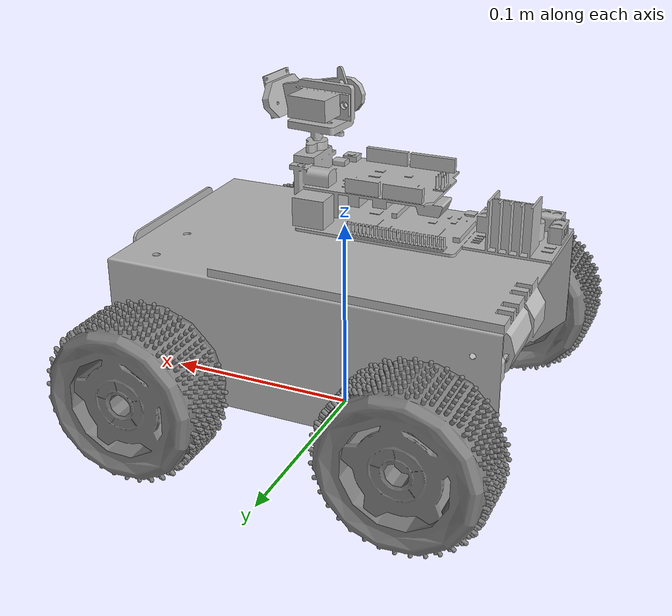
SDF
<?xml version="1.0" ?>
<sdf version="1.6">
  <model name='Axioma'>
    <pose>0 0 0 1.5708 0 0</pose>

    <link name='chassis'>
    <inertial>
        <mass>1</mass>
        <inertia>
          <ixx>0.0227</ixx>
          <ixy>0</ixy>
          <ixz>0</ixz>
          <iyy>0.0852</iyy>
          <iyz>0</iyz>
          <izz>0.1041</izz>
        </inertia>
      </inertial>
      <visual name='visual'>
        <geometry>
          <mesh>
          <scale>1 1 1</scale>
          <uri>model://axioma/meshes/visual/chasis.obj</uri>
        </mesh>
        </geometry>
        <material>
          <script>
            <uri>model://dolly/materials/scripts</uri>
            <uri>model://dolly/materials/textures</uri>
            <name>Dolly/fur</name>
          </script>
        </material>
      </visual>
       <sensor name="hls_lfcd_lds" type="ray">
          <pose>0 0.14 0 1.5708 0 0</pose>
          <always_on>true</always_on>
          <visualize>true</visualize>
          <pose>-0.064 0 0.121 0 0 0</pose>
          <update_rate>5</update_rate>
          <ray>
            <scan>
              <horizontal>
                <samples>360</samples>
                <resolution>1.000000</resolution>
                <min_angle>0.000000</min_angle>
                <max_angle>6.280000</max_angle>
              </horizontal>
            </scan>
            <range>
              <min>0.120000</min>
              <max>3.5</max>
              <resolution>0.001000</resolution>
            </range>
            <noise>
              <type>gaussian</type>
              <mean>0.0</mean>
              <stddev>0.01</stddev>
            </noise>
          </ray>
          <plugin name="turtlebot3_laserscan" filename="libgazebo_ros_ray_sensor.so">
            <ros>
              <namespace>/axioma</namespace>
                <remapping>~/out:=scan</remapping>
            </ros>
            <output_type>sensor_msgs/LaserScan</output_type>
            <frame_name>chassis</frame_name>
          </plugin>
        </sensor>
        <sensor name="intel_realsense_r200_depth" type="depth">
          <always_on>1</always_on>
          <update_rate>5</update_rate>
          <pose>0 0.4 0 -1.5708 0 0</pose>
          <camera name="realsense_depth_camera">
          </camera>
          <plugin name="intel_realsense_r200_depth_driver" filename="libgazebo_ros_camera.so">
            <ros>
            </ros>
            <camera_name>intel_realsense_r200_depth</camera_name>
            <frame_name>camera_depth_frame</frame_name>
            <hack_baseline>0.07</hack_baseline>
            <min_depth>0.001</min_depth>
            <max_depth>5.0</max_depth>
          </plugin>
        </sensor>
    </link>

    <link name='left_wheel_1'>
      <pose>0.06442 0.04068 -0.07385 0 0 0</pose>
      <inertial>
        <mass>0.1</mass>
        <inertia>
          <ixx>0.0029</ixx>
          <ixy>0</ixy>
          <ixz>0</ixz>
          <iyy>0.0029</iyy>
          <iyz>0</iyz>
          <izz>0.0056</izz>
        </inertia>
      </inertial>
      <visual name='visual'>
        <geometry>
          <mesh>
            <scale>1 1 1</scale>
            <uri>model://axioma/meshes/visual/llanta.obj</uri>
        </mesh>
        </geometry>
        <material>
          <diffuse>0.5 0.5 0.5 1</diffuse>
          <ambient>0 0 0 1</ambient>
          <specular>1 1 1 1</specular>
          <emissive>0 0 0 1</emissive>
        </material>
      </visual>
      <collision name='collision'>
        <geometry>
          <mesh>
          <scale>1 1 1</scale>
          <uri>model://axioma/meshes/collision/llanta.obj</uri>
        </mesh>
        </geometry>
        <surface>
          <friction>
            <ode>
              <mu>1</mu>
              <mu2>1</mu2>
              <slip1>0</slip1>
              <slip2>0</slip2>
            </ode>
          </friction>
          <contact>
            <ode>
              <soft_cfm>0</soft_cfm>
              <soft_erp>0.2</soft_erp>
              <kp>1e+13</kp>
              <kd>1</kd>
              <max_vel>0.01</max_vel>
              <min_depth>0.01</min_depth>
            </ode>
          </contact>
        </surface>
      </collision>
    </link>

<link name='left_wheel_2'>

      <pose>-0.070092 0.04068 -0.07385 0 0 0</pose>
      <inertial>
        <mass>0.1</mass>
        <inertia>
          <ixx>0.0029</ixx>
          <ixy>0</ixy>
          <ixz>0</ixz>
          <iyy>0.0029</iyy>
          <iyz>0</iyz>
          <izz>0.0056</izz>
        </inertia>
      </inertial>
      <visual name='visual'>
        <geometry>
          <mesh>
            <scale>1 1 1</scale>
            <uri>model://axioma/meshes/visual/llanta.obj</uri>
        </mesh>
        </geometry>
        <material>
          <diffuse>0.5 0.5 0.5 1</diffuse>
          <ambient>0 0 0 1</ambient>
          <specular>1 1 1 1</specular>
          <emissive>0 0 0 1</emissive>
        </material>
      </visual>
      <collision name='collision'>
        <geometry>
          <mesh>
          <scale>1 1 1</scale>
          <uri>model://axioma/meshes/collision/llanta.obj</uri>
        </mesh>
        </geometry>
        <surface>
          <friction>
            <ode>
              <mu>1</mu>
              <mu2>1</mu2>
              <slip1>0</slip1>
              <slip2>0</slip2>
            </ode>
          </friction>
          <contact>
            <ode>
              <soft_cfm>0</soft_cfm>
              <soft_erp>0.2</soft_erp>
              <kp>1e+13</kp>
              <kd>1</kd>
              <max_vel>0.01</max_vel>
              <min_depth>0.01</min_depth>
            </ode>
          </contact>
        </surface>
      </collision>
    </link>

    <link name='right_wheel_3'>
      <pose>-0.070092 0.04068 0.06385 0 3.14159 0</pose>
      <inertial>
        <mass>0.1</mass>
        <inertia>
          <ixx>0.0029</ixx>
          <ixy>0</ixy>
          <ixz>0</ixz>
          <iyy>0.0029</iyy>
          <iyz>0</iyz>
          <izz>0.0056</izz>
        </inertia>
      </inertial>
      <visual name='visual'>
        <geometry>
          <mesh>
            <scale>1 1 1</scale>
            <uri>model://axioma/meshes/visual/llanta.obj</uri>
        </mesh>
        </geometry>
        <material>
          <diffuse>0.5 0.5 0.5 1</diffuse>
          <ambient>0 0 0 1</ambient>
          <specular>1 1 1 1</specular>
          <emissive>0 0 0 1</emissive>
        </material>
      </visual>
      <collision name='collision'>
        <geometry>
          <mesh>
          <scale>1 1 1</scale>
          <uri>model://axioma/meshes/collision/llanta.obj</uri>
        </mesh>
        </geometry>
        <surface>
          <friction>
            <ode>
              <mu>1</mu>
              <mu2>1</mu2>
              <slip1>0</slip1>
              <slip2>0</slip2>
            </ode>
          </friction>
          <contact>
            <ode>
              <soft_cfm>0</soft_cfm>
              <soft_erp>0.2</soft_erp>
              <kp>1e+13</kp>
              <kd>1</kd>
              <max_vel>0.01</max_vel>
              <min_depth>0.01</min_depth>
            </ode>
          </contact>
        </surface>
      </collision>
    </link>

    <link name='right_wheel_4'>
      <pose>0.06442 0.04068 0.06385 0 3.14159 0</pose>
      <inertial>
        <mass>0.1</mass>
        <inertia>
          <ixx>0.0029</ixx>
          <ixy>0</ixy>
          <ixz>0</ixz>
          <iyy>0.0029</iyy>
          <iyz>0</iyz>
          <izz>0.0056</izz>
        </inertia>
      </inertial>
      <visual name='visual'>
        <geometry>
          <mesh>
            <scale>1 1 1</scale>
            <uri>model://axioma/meshes/visual/llanta.obj</uri>
        </mesh>
        </geometry>
        <material>
          <diffuse>0.5 0.5 0.5 1</diffuse>
          <ambient>0 0 0 1</ambient>
          <specular>1 1 1 1</specular>
          <emissive>0 0 0 1</emissive>
        </material>
      </visual>
      <collision name='collision'>
        <geometry>
          <mesh>
          <scale>1 1 1</scale>
          <uri>model://axioma/meshes/collision/llanta.obj</uri>
        </mesh>
        </geometry>
        <surface>
          <friction>
            <ode>
              <mu>1</mu>
              <mu2>1</mu2>
              <slip1>0</slip1>
              <slip2>0</slip2>
            </ode>
          </friction>
          <contact>
            <ode>
              <soft_cfm>0</soft_cfm>
              <soft_erp>0.2</soft_erp>
              <kp>1e+13</kp>
              <kd>1</kd>
              <max_vel>0.01</max_vel>
              <min_depth>0.01</min_depth>
            </ode>
          </contact>
        </surface>
      </collision>
    </link>

    <joint name='left_wheel_joint_1' type='revolute'>
      <parent>chassis</parent>
      <child>left_wheel_1</child>
      <axis>
        <xyz>0 0 -1</xyz>
        <limit>
          <lower>1.79769e+308</lower>
          <upper>-1.79769e+308</upper>
        </limit>
      </axis>
    </joint>

    <joint name='left_wheel_joint_2' type='revolute'>
      <parent>chassis</parent>
      <child>left_wheel_2</child>
      <axis>
        <xyz>0 0 -1</xyz>
        <limit>
          <lower>1.79769e+308</lower>
          <upper>-1.79769e+308</upper>
        </limit>
      </axis>
    </joint>

    <joint name='right_wheel_joint_3' type='revolute'>
      <parent>chassis</parent>
      <child>right_wheel_3</child>
      <axis>
        <xyz>0 0 1</xyz>
        <limit>
          <lower>1.79769e+308</lower>
          <upper>-1.79769e+308</upper>
        </limit>
      </axis>
    </joint>

    <joint name='right_wheel_joint_4' type='revolute'>
      <parent>chassis</parent>
      <child>right_wheel_4</child>
      <axis>
        <xyz>0 0 1</xyz>
        <limit>
          <lower>1.79769e+308</lower>
          <upper>-1.79769e+308</upper>
        </limit>
      </axis>
    </joint>

<plugin name='skid_steer_drive' filename='libgazebo_ros_diff_drive.so'>
        <ros>
          <!-- Set namespace -->
          <namespace>/axioma</namespace>
          <!-- Remap default topics -->
          <argument>cmd_vel:=cmd_demo</argument>
          <argument>odom:=odom_demo</argument>
        </ros>
        <!-- Update rate -->
        <update_rate>500</update_rate>
        <!-- Number of wheel pairs -->
        <num_wheel_pairs>2</num_wheel_pairs>
        <!-- wheels0 -->
        <left_joint>left_wheel_joint_1</left_joint>
        <right_joint>right_wheel_joint_4</right_joint>
        <!-- wheels1-->
        <left_joint>left_wheel_joint_2</left_joint>
        <right_joint>right_wheel_joint_3</right_joint>
        <!-- kinematics -->
        <wheel_separation>0.1725</wheel_separation>
        <wheel_separation>0.1725</wheel_separation>
        <wheel_diameter>0.0762</wheel_diameter>
        <wheel_diameter>0.0762</wheel_diameter>
        <!-- limits -->
        <max_wheel_torque>30</max_wheel_torque>
        <max_wheel_acceleration>1</max_wheel_acceleration>
        <!-- output -->
        <publish_odom>true</publish_odom>
        <publish_odom_tf>true</publish_odom_tf>
        <publish_wheel_tf>true</publish_wheel_tf>
        <odometry_frame>odom_demo</odometry_frame>
        <robot_base_frame>chassis</robot_base_frame>
      </plugin>

  </model>
</sdf>
